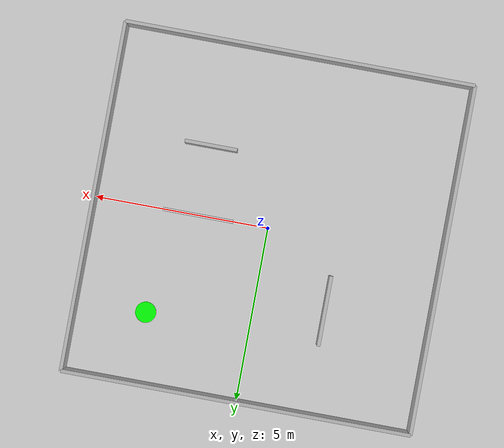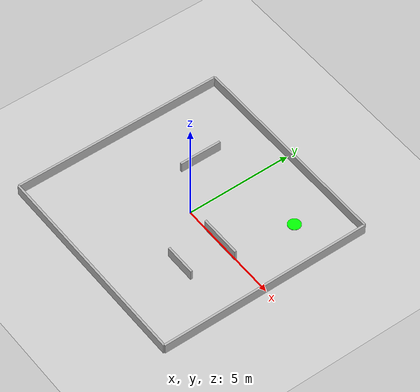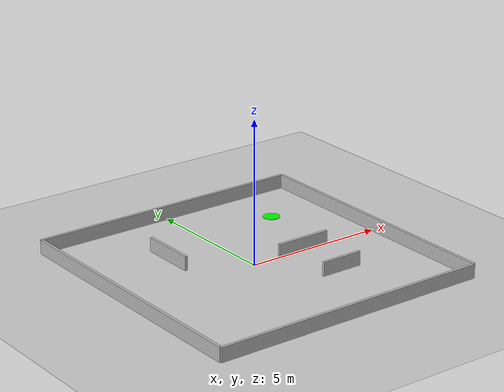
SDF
<?xml version="1.0" ?>
<sdf version="1.6">
  <world name="simple_maze">

    <!-- Physics -->
    <physics name="1ms" type="ode">
      <max_step_size>0.001</max_step_size>
      <real_time_factor>1.0</real_time_factor>
    </physics>

    <!-- Ground plane -->
    <model name="ground_plane">
      <static>true</static>
      <link name="link">
        <collision name="collision">
          <geometry>
            <plane><normal>0 0 1</normal><size>100 100</size></plane>
          </geometry>
        </collision>
        <visual name="visual">
          <geometry>
            <plane><normal>0 0 1</normal><size>100 100</size></plane>
          </geometry>
          <material>
            <ambient>0.8 0.8 0.8 1</ambient>
            <diffuse>0.8 0.8 0.8 1</diffuse>
          </material>
        </visual>
      </link>
    </model>

    <!-- Sun -->
    <light type="directional" name="sun">
      <cast_shadows>true</cast_shadows>
      <pose>0 0 10 0 0 0</pose>
      <diffuse>0.8 0.8 0.8 1</diffuse>
      <specular>0.2 0.2 0.2 1</specular>
      <attenuation>
        <range>1000</range>
        <constant>0.9</constant>
        <linear>0.01</linear>
        <quadratic>0.001</quadratic>
      </attenuation>
      <direction>-0.5 0.1 -0.9</direction>
    </light>

    <!-- Outer walls -->
    <model name="wall_north">
      <static>true</static>
      <pose>0 5 0.25 0 0 0</pose>
      <link name="link">
        <collision name="collision">
          <geometry><box><size>10 0.1 0.5</size></box></geometry>
          <surface>
            <friction><ode><mu>1</mu><mu2>1</mu2></ode></friction>
          </surface>
        </collision>
        <visual name="visual">
          <geometry><box><size>10 0.1 0.5</size></box></geometry>
          <material>
            <ambient>0.7 0.7 0.7 1</ambient>
            <diffuse>0.7 0.7 0.7 1</diffuse>
          </material>
        </visual>
      </link>
    </model>
    <model name="wall_south">
      <static>true</static>
      <pose>0 -5 0.25 0 0 0</pose>
      <link name="link">
        <collision name="collision"><geometry><box><size>10 0.1 0.5</size></box></geometry></collision>
        <visual name="visual"><geometry><box><size>10 0.1 0.5</size></box></geometry></visual>
      </link>
    </model>
    <model name="wall_east">
      <static>true</static>
      <pose>5 0 0.25 0 0 1.5708</pose>
      <link name="link">
        <collision name="collision"><geometry><box><size>10 0.1 0.5</size></box></geometry></collision>
        <visual name="visual"><geometry><box><size>10 0.1 0.5</size></box></geometry></visual>
      </link>
    </model>
    <model name="wall_west">
      <static>true</static>
      <pose>-5 0 0.25 0 0 1.5708</pose>
      <link name="link">
        <collision name="collision"><geometry><box><size>10 0.1 0.5</size></box></geometry></collision>
        <visual name="visual"><geometry><box><size>10 0.1 0.5</size></box></geometry></visual>
      </link>
    </model>

    <!-- Simple obstacles -->
    <model name="obs1">
      <static>true</static>
      <pose>2 0 0.25 0 0 0</pose>
      <link name="link">
        <collision name="collision"><geometry><box><size>2 0.1 0.5</size></box></geometry></collision>

        <visual name="visual"><geometry><box><size>2 0.1 0.5</size></box></geometry></visual>
      </link>
    </model>
    <model name="obs2">
      <static>true</static>
      <pose>-2 2 0.25 0 0 1.5708</pose>
      <link name="link">
        <collision name="collision"><geometry><box><size>2 0.1 0.5</size></box></geometry></collision>
        <visual name="visual"><geometry><box><size>2 0.1 0.5</size></box></geometry></visual>
      </link>
    </model>
    <model name="obs3">
      <static>true</static>
      <pose>2 -2 0.25 0 0 0</pose>
      <link name="link">
        <collision name="collision"><geometry><box><size>1.5 0.1 0.5</size></box></geometry></collision>
        <visual name="visual"><geometry><box><size>1.5 0.1 0.5</size></box></geometry></visual>
      </link>
    </model>

    <!-- Goal marker (visual only) -->
    <model name="goal">
      <static>true</static>
      <pose>3 3 0.01 0 0 0</pose>
      <link name="link">
        <visual name="visual">
          <geometry><cylinder><radius>0.3</radius><length>0.02</length></cylinder></geometry>
          <material><ambient>0 1 0 1</ambient><diffuse>0 1 0 1</diffuse></material>
        </visual>
      </link>
    </model>

  </world>
</sdf>
